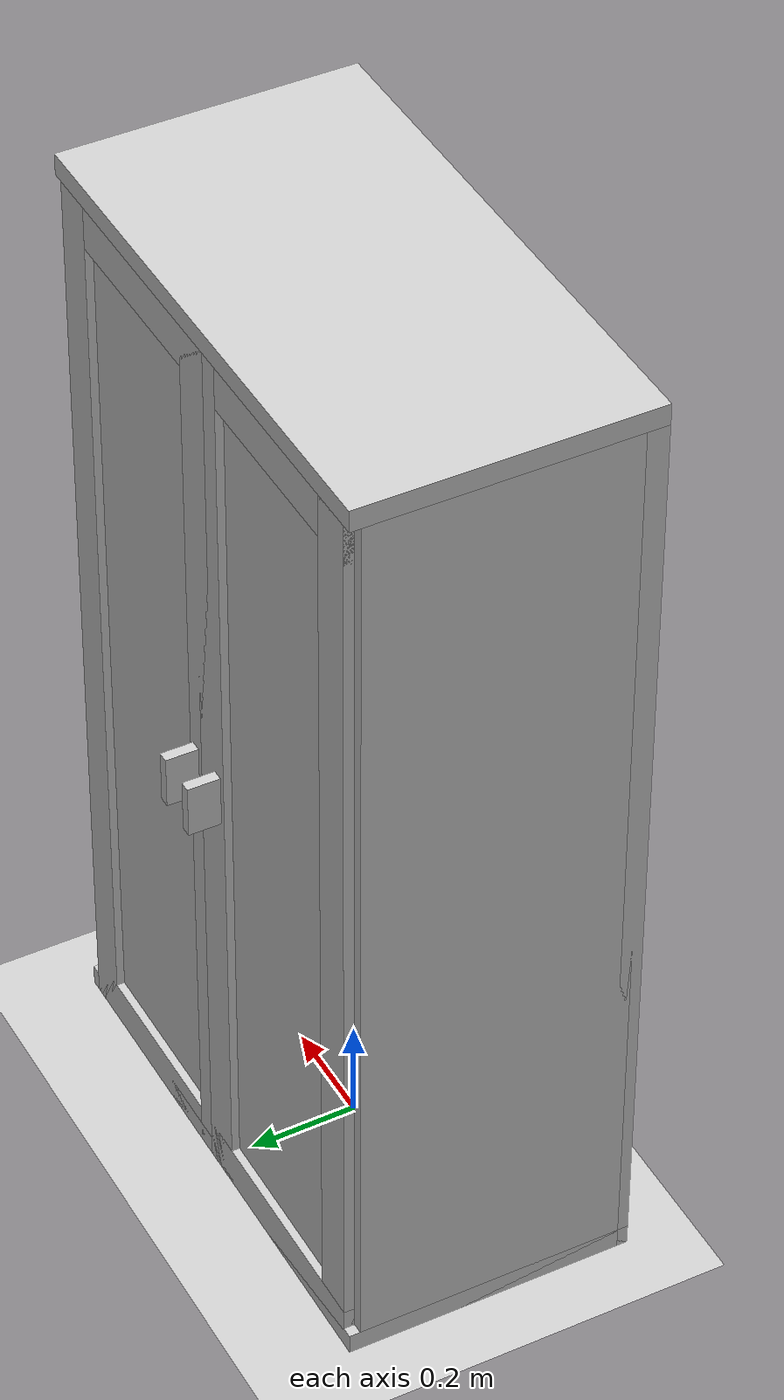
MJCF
<mujoco model="tool_cabinet">
  <compiler angle="degree" coordinate="local" inertiafromgeom="true"/>
  <option timestep="0.01" gravity="0 0 -9.81" integrator="RK4"/>

  <visual>
    <headlight ambient="0.3 0.3 0.3" diffuse="0.6 0.6 0.6" specular="0.1 0.1 0.1"/>
    <rgba haze="0.15 0.25 0.35 1"/>
    <quality shadowsize="4096"/>
    <global offwidth="3840" offheight="2160"/> <!-- 4K Rendering Hint -->
  </visual>

  <default>
    <geom type="box" rgba="0.8 0.8 0.8 1" friction="1 0.5 0.5"/>
    <joint damping="1" stiffness="0"/>
  </default>

  <asset>
    <texture type="skybox" builtin="gradient" rgb1="0.3 0.5 0.7" rgb2="0 0 0" width="512" height="3072"/>
    <texture type="2d" name="groundplane" builtin="checker" rgb1="0.2 0.3 0.4" rgb2="0.1 0.2 0.3" width="512" height="512" mark="edge" markrgb="0.8 0.8 0.8"/>
    <material name="groundplane" texture="groundplane" texrepeat="2 2" texuniform="true" reflectance="0.2"/>

    <!-- 1. Color Adjustment: High reflection silver metal -->
    <material name="silver_metal" rgba="0.9 0.92 0.95 1" shininess="0.9" specular="1.0" reflectance="0.7"/>

    <!-- 2. Door Processing: Moderate saturation blue (RGB 0 100 200 -> 0 0.39 0.78) -->
    <material name="door_blue" rgba="0.0 0.392 0.784 1" shininess="0.6" specular="0.7" reflectance="0.3"/>

    <material name="wood_light" rgba="0.78 0.65 0.45 1" shininess="0.15" specular="0.2" reflectance="0.1"/>
    <material name="wood_dark" rgba="0.66 0.52 0.33 1" shininess="0.2" specular="0.25" reflectance="0.12"/>

    <material name="glass" rgba="0.8 0.9 1 0.3" shininess="0.9" specular="0.9" reflectance="0.2"/>
    <material name="glass_blue" rgba="0.0 0.392 0.784 0.5" shininess="0.9" specular="0.9" reflectance="0.4"/>

    <material name="tool_red" rgba="0.8 0.2 0.2 1"/>
    <material name="tool_blue" rgba="0.2 0.2 0.8 1"/>
    <material name="tool_yellow" rgba="0.8 0.8 0.2 1"/>
    <material name="handle_metal" rgba="0.2 0.2 0.2 1" shininess="0.5"/>
  </asset>

  <worldbody>
    <!-- 4. Lighting Optimization: Adjusted for better highlights and shadows -->
    <light pos="2 2 4" dir="-0.5 -0.5 -1" castshadow="true" diffuse="0.8 0.8 0.8" specular="0.5 0.5 0.5"/>
    <light pos="-2 -2 4" dir="0.5 0.5 -1" castshadow="false" diffuse="0.4 0.4 0.4" specular="0.2 0.2 0.2"/>

    <geom name="floor" size="0 0 0.05" type="plane" material="groundplane" pos="0 0 0"/>

    <!-- Cabinet Body (Wood) -->
    <body name="cabinet" pos="0 0 0">
      <!-- Back Wall -->
      <geom name="back_wall" size="0.5 0.02 0.9" pos="0 -0.25 0.9" material="wood_light"/>
      <!-- Left Wall -->
      <geom name="left_wall" size="0.02 0.25 0.9" pos="-0.48 0 0.9" material="wood_light"/>
      <!-- Right Wall -->
      <geom name="right_wall" size="0.02 0.25 0.9" pos="0.48 0 0.9" material="wood_light"/>
      <!-- Top -->
      <geom name="top" size="0.5 0.27 0.02" pos="0 0 1.82" material="wood_light"/>
      <!-- Bottom -->
      <geom name="bottom" size="0.5 0.27 0.02" pos="0 0 0.02" material="wood_light"/>

      <!-- Shelves -->
      <geom name="shelf_1" size="0.46 0.23 0.01" pos="0 0 0.4" material="wood_light"/>
      <geom name="shelf_2" size="0.46 0.23 0.01" pos="0 0 0.8" material="wood_light"/>
      <geom name="shelf_3" size="0.46 0.23 0.01" pos="0 0 1.2" material="wood_light"/>
      <geom name="shelf_4" size="0.46 0.23 0.01" pos="0 0 1.55" material="wood_light"/>

      <!-- Left Door (Wood) -->
      <body name="left_door" pos="-0.48 0.25 0.9">
        <joint name="left_hinge" axis="0 0 1" pos="0 0 0" range="0 135"/>
        <!-- Frame - Using door_blue -->
        <geom name="ld_left_frame" size="0.04 0.02 0.9" pos="0.04 0 0" material="wood_dark"/>
        <geom name="ld_right_frame" size="0.04 0.02 0.9" pos="0.46 0 0" material="wood_dark"/>
        <geom name="ld_top_frame" size="0.25 0.02 0.04" pos="0.25 0 0.86" material="wood_dark"/>
        <geom name="ld_bottom_frame" size="0.25 0.02 0.04" pos="0.25 0 -0.86" material="wood_dark"/>
        <!-- Glass -->
        <geom name="ld_glass" type="box" size="0.2 0.005 0.82" pos="0.25 0 0" material="glass_blue"/>
        <!-- Handle -->
        <geom name="ld_handle" type="box" size="0.01 0.03 0.05" pos="0.44 0.05 0" material="handle_metal"/>
      </body>

      <!-- Right Door (Wood) -->
      <body name="right_door" pos="0.48 0.25 0.9">
        <joint name="right_hinge" axis="0 0 1" pos="0 0 0" range="-135 0"/>
        <!-- Frame - Using door_blue -->
        <geom name="rd_right_frame" size="0.04 0.02 0.9" pos="-0.04 0 0" material="wood_dark"/>
        <geom name="rd_left_frame" size="0.04 0.02 0.9" pos="-0.46 0 0" material="wood_dark"/>
        <geom name="rd_top_frame" size="0.25 0.02 0.04" pos="-0.25 0 0.86" material="wood_dark"/>
        <geom name="rd_bottom_frame" size="0.25 0.02 0.04" pos="-0.25 0 -0.86" material="wood_dark"/>
        <!-- Glass -->
        <geom name="rd_glass" type="box" size="0.2 0.005 0.82" pos="-0.25 0 0" material="glass_blue"/>
        <!-- Handle -->
        <geom name="rd_handle" type="box" size="0.01 0.03 0.05" pos="-0.44 0.05 0" material="handle_metal"/>
      </body>

      <!-- Tools/Items -->
      <body name="tools" pos="0 0 0">
         <!-- Shelf 1 Items -->
         <geom name="tool_box_1" type="box" size="0.1 0.08 0.05" pos="-0.2 0 0.46" material="tool_blue"/>
         <geom name="tool_box_2" type="box" size="0.1 0.08 0.05" pos="0.2 0 0.46" material="tool_red"/>

         <!-- Shelf 2 Items -->
         <geom name="wrench_set" type="box" size="0.15 0.1 0.02" pos="0 0 0.83" material="silver_metal"/>
         <geom name="can_1" type="cylinder" size="0.04 0.06" pos="-0.3 0 0.86" material="tool_yellow"/>

         <!-- Shelf 3 Items -->
         <geom name="helmet" type="sphere" size="0.1" pos="0.2 0 1.3" material="tool_yellow"/>
      </body>

    </body>
  </worldbody>

  <actuator>
      <position name="open_left" joint="left_hinge" kp="100" kv="10"/>
      <position name="open_right" joint="right_hinge" kp="100" kv="10"/>
  </actuator>
</mujoco>
